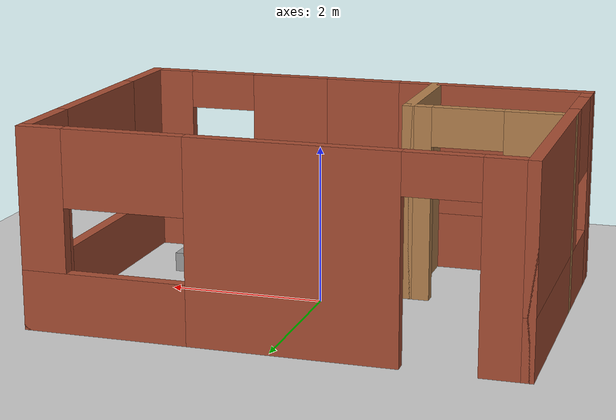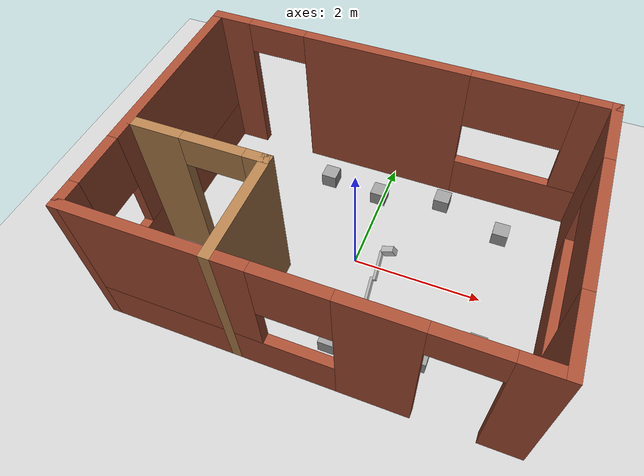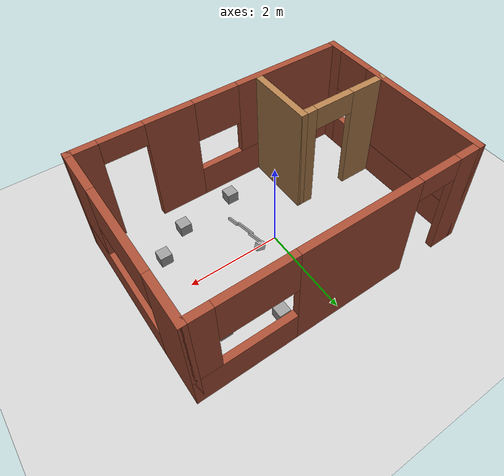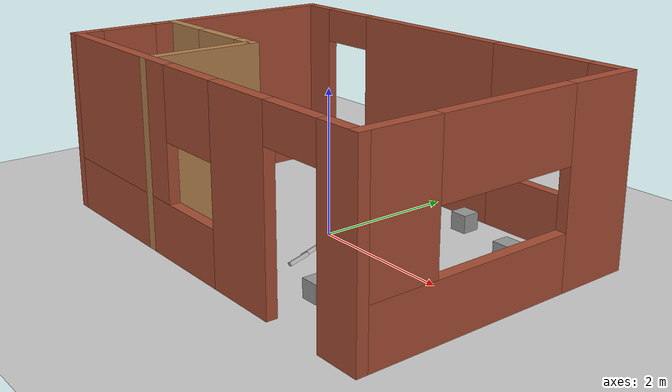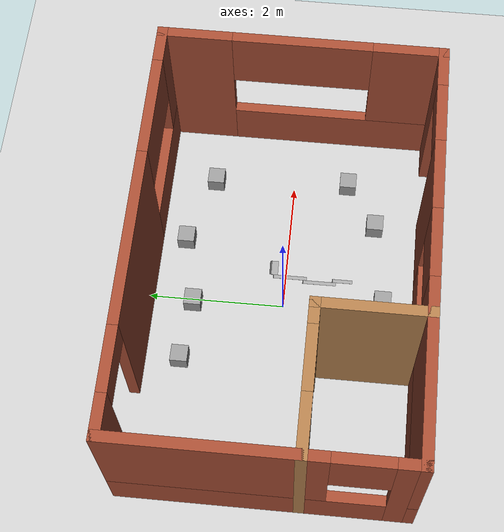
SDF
<sdf version="1.7">
 <world name="default">
  <light name="sun" type="directional">
   <pose>0 0 10 0 -0 0</pose>
   <diffuse>0.8 0.8 0.8 1</diffuse>
   <specular>0.2 0.2 0.2 1</specular>
   <attenuation>
    <range>1000</range>
    <constant>0.9</constant>
    <linear>0.01</linear>
    <quadratic>0.001</quadratic>
   </attenuation>
   <direction>-0.5 0.1 -0.9</direction>
   <spot><inner_angle>0</inner_angle><outer_angle>0</outer_angle><falloff>0</falloff></spot>
  </light>
  <model name="ground_plane">
   <static>1</static>
   <link name="link">
    <collision name="collision">
     <geometry><plane><normal>0 0 1</normal><size>100 100</size></plane></geometry>
     <surface>
      <contact><collide_bitmask>65535</collide_bitmask></contact>
      <friction><ode><mu>100</mu><mu2>50</mu2></ode></friction>
     </surface>
    </collision>
    <visual name="visual">
     <cast_shadows>0</cast_shadows>
     <geometry><plane><normal>0 0 1</normal><size>100 100</size></plane></geometry>
     <material>
      <script><uri>file://media/materials/scripts/gazebo.material</uri><name>Gazebo/Grey</name></script>
     </material>
    </visual>
   </link>
  </model>
  <gravity>0 0 -9.8</gravity>
  <magnetic_field>6e-06 2.3e-05 -4.2e-05</magnetic_field>
  <atmosphere type="adiabatic"/>
  <physics type="ode">
   <max_step_size>0.001</max_step_size>
   <real_time_factor>1</real_time_factor>
   <real_time_update_rate>1000</real_time_update_rate>
  </physics>
  <scene><ambient>0.4 0.4 0.4 1</ambient><background>0.7 0.7 0.7 1</background><shadows>1</shadows></scene>
  <audio><device>default</device></audio>
  <spherical_coordinates>
   <surface_model>EARTH_WGS84</surface_model>
   <latitude_deg>0</latitude_deg>
   <longitude_deg>0</longitude_deg>
   <elevation>0</elevation>
   <heading_deg>0</heading_deg>
  </spherical_coordinates>
  <model name="scara_world">
   <link name="Wall_0">
    <pose>0 2 0 0 -0 0</pose>
    <visual name="Wall_0_Visual_0">
     <pose>-2.7625 0 1.25 0 -0 0</pose>
     <geometry><box><size>0.625 0.15 2.5</size></box></geometry>
     <material>
      <script><uri>file://media/materials/scripts/gazebo.material</uri><name>Gazebo/Bricks</name></script>
      <ambient>1 1 1 1</ambient>
     </material>
     <meta><layer>0</layer></meta>
    </visual>
    <collision name="Wall_0_Collision_0">
     <geometry><box><size>0.625 0.15 2.5</size></box></geometry>
     <pose>-2.7625 0 1.25 0 -0 0</pose>
    </collision>
    <visual name="Wall_0_Visual_1">
     <pose>-0.275 0 1.25 0 -0 0</pose>
     <geometry><box><size>2.55 0.15 2.5</size></box></geometry>
     <material>
      <script><uri>file://media/materials/scripts/gazebo.material</uri><name>Gazebo/Bricks</name></script>
      <ambient>1 1 1 1</ambient>
     </material>
     <meta><layer>0</layer></meta>
    </visual>
    <collision name="Wall_0_Collision_1">
     <geometry><box><size>2.55 0.15 2.5</size></box></geometry>
     <pose>-0.275 0 1.25 0 -0 0</pose>
    </collision>
    <visual name="Wall_0_Visual_2">
     <pose>2.0375 0 0.375 0 -0 0</pose>
     <geometry><box><size>2.075 0.15 0.75</size></box></geometry>
     <material>
      <script><uri>file://media/materials/scripts/gazebo.material</uri><name>Gazebo/Bricks</name></script>
      <ambient>1 1 1 1</ambient>
     </material>
     <meta><layer>0</layer></meta>
    </visual>
    <collision name="Wall_0_Collision_2">
     <geometry><box><size>2.075 0.15 0.75</size></box></geometry>
     <pose>2.0375 0 0.375 0 -0 0</pose>
    </collision>
    <visual name="Wall_0_Visual_3">
     <pose>2.7875 0 1.625 0 -0 0</pose>
     <geometry><box><size>0.575 0.15 1.75</size></box></geometry>
     <material>
      <script><uri>file://media/materials/scripts/gazebo.material</uri><name>Gazebo/Bricks</name></script>
      <ambient>1 1 1 1</ambient>
     </material>
     <meta><layer>0</layer></meta>
    </visual>
    <collision name="Wall_0_Collision_3">
     <geometry><box><size>0.575 0.15 1.75</size></box></geometry>
     <pose>2.7875 0 1.625 0 -0 0</pose>
    </collision>
    <visual name="Wall_0_Visual_4">
     <pose>1.75 0 2.025 0 -0 0</pose>
     <geometry><box><size>1.5 0.15 0.95</size></box></geometry>
     <material>
      <script><uri>file://media/materials/scripts/gazebo.material</uri><name>Gazebo/Bricks</name></script>
      <ambient>1 1 1 1</ambient>
     </material>
     <meta><layer>0</layer></meta>
    </visual>
    <collision name="Wall_0_Collision_4">
     <geometry><box><size>1.5 0.15 0.95</size></box></geometry>
     <pose>1.75 0 2.025 0 -0 0</pose>
    </collision>
    <visual name="Wall_0_Visual_5">
     <pose>-2 0 2.25 0 -0 0</pose>
     <geometry><box><size>0.9 0.15 0.5</size></box></geometry>
     <material>
      <script><uri>file://media/materials/scripts/gazebo.material</uri><name>Gazebo/Bricks</name></script>
      <ambient>1 1 1 1</ambient>
     </material>
     <meta><layer>0</layer></meta>
    </visual>
    <collision name="Wall_0_Collision_5">
     <geometry><box><size>0.9 0.15 0.5</size></box></geometry>
     <pose>-2 0 2.25 0 -0 0</pose>
    </collision>
   </link>
   <link name="Wall_1">
    <pose>3 0 0 0 -0 -1.5708</pose>
    <visual name="Wall_1_Visual_0">
     <pose>-1.5375 0 1.25 0 -0 0</pose>
     <geometry><box><size>1.075 0.15 2.5</size></box></geometry>
     <material>
      <script><uri>file://media/materials/scripts/gazebo.material</uri><name>Gazebo/Bricks</name></script>
      <ambient>1 1 1 1</ambient>
     </material>
     <meta><layer>0</layer></meta>
    </visual>
    <collision name="Wall_1_Collision_0">
     <geometry><box><size>1.075 0.15 2.5</size></box></geometry>
     <pose>-1.5375 0 1.25 0 -0 0</pose>
    </collision>
    <visual name="Wall_1_Visual_1">
     <pose>0.5375 0 0.375 0 -0 0</pose>
     <geometry><box><size>3.075 0.15 0.75</size></box></geometry>
     <material>
      <script><uri>file://media/materials/scripts/gazebo.material</uri><name>Gazebo/Bricks</name></script>
      <ambient>1 1 1 1</ambient>
     </material>
     <meta><layer>0</layer></meta>
    </visual>
    <collision name="Wall_1_Collision_1">
     <geometry><box><size>3.075 0.15 0.75</size></box></geometry>
     <pose>0.5375 0 0.375 0 -0 0</pose>
    </collision>
    <visual name="Wall_1_Visual_2">
     <pose>1.5375 0 1.625 0 -0 0</pose>
     <geometry><box><size>1.075 0.15 1.75</size></box></geometry>
     <material>
      <script><uri>file://media/materials/scripts/gazebo.material</uri><name>Gazebo/Bricks</name></script>
      <ambient>1 1 1 1</ambient>
     </material>
     <meta><layer>0</layer></meta>
    </visual>
    <collision name="Wall_1_Collision_2">
     <geometry><box><size>1.075 0.15 1.75</size></box></geometry>
     <pose>1.5375 0 1.625 0 -0 0</pose>
    </collision>
    <visual name="Wall_1_Visual_3">
     <pose>0 0 2.025 0 -0 0</pose>
     <geometry><box><size>2 0.15 0.95</size></box></geometry>
     <material>
      <script><uri>file://media/materials/scripts/gazebo.material</uri><name>Gazebo/Bricks</name></script>
      <ambient>1 1 1 1</ambient>
     </material>
     <meta><layer>0</layer></meta>
    </visual>
    <collision name="Wall_1_Collision_3">
     <geometry><box><size>2 0.15 0.95</size></box></geometry>
     <pose>0 0 2.025 0 -0 0</pose>
    </collision>
   </link>
   <link name="Wall_2">
    <pose>0 -2 0 0 -0 3.14159</pose>
    <visual name="Wall_2_Visual_0">
     <pose>-2.7625 0 1.25 0 -0 0</pose>
     <geometry><box><size>0.625 0.15 2.5</size></box></geometry>
     <material>
      <script><uri>file://media/materials/scripts/gazebo.material</uri><name>Gazebo/Bricks</name></script>
      <ambient>1 1 1 1</ambient>
     </material>
     <meta><layer>0</layer></meta>
    </visual>
    <collision name="Wall_2_Collision_0">
     <geometry><box><size>0.625 0.15 2.5</size></box></geometry>
     <pose>-2.7625 0 1.25 0 -0 0</pose>
    </collision>
    <visual name="Wall_2_Visual_1">
     <pose>-1.025 0 1.25 0 -0 0</pose>
     <geometry><box><size>1.05 0.15 2.5</size></box></geometry>
     <material>
      <script><uri>file://media/materials/scripts/gazebo.material</uri><name>Gazebo/Bricks</name></script>
      <ambient>1 1 1 1</ambient>
     </material>
     <meta><layer>0</layer></meta>
    </visual>
    <collision name="Wall_2_Collision_1">
     <geometry><box><size>1.05 0.15 2.5</size></box></geometry>
     <pose>-1.025 0 1.25 0 -0 0</pose>
    </collision>
    <visual name="Wall_2_Visual_2">
     <pose>1.2875 0 0.375 0 -0 0</pose>
     <geometry><box><size>3.575 0.15 0.75</size></box></geometry>
     <material>
      <script><uri>file://media/materials/scripts/gazebo.material</uri><name>Gazebo/Bricks</name></script>
      <ambient>1 1 1 1</ambient>
     </material>
     <meta><layer>0</layer></meta>
    </visual>
    <collision name="Wall_2_Collision_2">
     <geometry><box><size>3.575 0.15 0.75</size></box></geometry>
     <pose>1.2875 0 0.375 0 -0 0</pose>
    </collision>
    <visual name="Wall_2_Visual_3">
     <pose>1.7875 0 1.625 0 -0 0</pose>
     <geometry><box><size>2.575 0.15 1.75</size></box></geometry>
     <material>
      <script><uri>file://media/materials/scripts/gazebo.material</uri><name>Gazebo/Bricks</name></script>
      <ambient>1 1 1 1</ambient>
     </material>
     <meta><layer>0</layer></meta>
    </visual>
    <collision name="Wall_2_Collision_3">
     <geometry><box><size>2.575 0.15 1.75</size></box></geometry>
     <pose>1.7875 0 1.625 0 -0 0</pose>
    </collision>
    <visual name="Wall_2_Visual_4">
     <pose>0 0 2.025 0 -0 0</pose>
     <geometry><box><size>1 0.15 0.95</size></box></geometry>
     <material>
      <script><uri>file://media/materials/scripts/gazebo.material</uri><name>Gazebo/Bricks</name></script>
      <ambient>1 1 1 1</ambient>
     </material>
     <meta><layer>0</layer></meta>
    </visual>
    <collision name="Wall_2_Collision_4">
     <geometry><box><size>1 0.15 0.95</size></box></geometry>
     <pose>0 0 2.025 0 -0 0</pose>
    </collision>
    <visual name="Wall_2_Visual_5">
     <pose>-2 0 2.25 0 -0 0</pose>
     <geometry><box><size>0.9 0.15 0.5</size></box></geometry>
     <material>
      <script><uri>file://media/materials/scripts/gazebo.material</uri><name>Gazebo/Bricks</name></script>
      <ambient>1 1 1 1</ambient>
     </material>
     <meta><layer>0</layer></meta>
    </visual>
    <collision name="Wall_2_Collision_5">
     <geometry><box><size>0.9 0.15 0.5</size></box></geometry>
     <pose>-2 0 2.25 0 -0 0</pose>
    </collision>
   </link>
   <link name="Wall_3">
    <pose>-3 0 0 0 -0 1.5708</pose>
    <visual name="Wall_3_Visual_0">
     <pose>-1.8625 0 1.25 0 -0 0</pose>
     <geometry><box><size>0.425 0.15 2.5</size></box></geometry>
     <material>
      <script><uri>file://media/materials/scripts/gazebo.material</uri><name>Gazebo/Bricks</name></script>
      <ambient>1 1 1 1</ambient>
     </material>
     <meta><layer>0</layer></meta>
    </visual>
    <collision name="Wall_3_Collision_0">
     <geometry><box><size>0.425 0.15 2.5</size></box></geometry>
     <pose>-1.8625 0 1.25 0 -0 0</pose>
    </collision>
    <visual name="Wall_3_Visual_1">
     <pose>0.2125 0 0.375 0 -0 0</pose>
     <geometry><box><size>3.725 0.15 0.75</size></box></geometry>
     <material>
      <script><uri>file://media/materials/scripts/gazebo.material</uri><name>Gazebo/Bricks</name></script>
      <ambient>1 1 1 1</ambient>
     </material>
     <meta><layer>0</layer></meta>
    </visual>
    <collision name="Wall_3_Collision_1">
     <geometry><box><size>3.725 0.15 0.75</size></box></geometry>
     <pose>0.2125 0 0.375 0 -0 0</pose>
    </collision>
    <visual name="Wall_3_Visual_2">
     <pose>0.6125 0 1.625 0 -0 0</pose>
     <geometry><box><size>2.925 0.15 1.75</size></box></geometry>
     <material>
      <script><uri>file://media/materials/scripts/gazebo.material</uri><name>Gazebo/Bricks</name></script>
      <ambient>1 1 1 1</ambient>
     </material>
     <meta><layer>0</layer></meta>
    </visual>
    <collision name="Wall_3_Collision_2">
     <geometry><box><size>2.925 0.15 1.75</size></box></geometry>
     <pose>0.6125 0 1.625 0 -0 0</pose>
    </collision>
    <visual name="Wall_3_Visual_3">
     <pose>-1.25 0 2.025 0 -0 0</pose>
     <geometry><box><size>0.8 0.15 0.95</size></box></geometry>
     <material>
      <script><uri>file://media/materials/scripts/gazebo.material</uri><name>Gazebo/Bricks</name></script>
      <ambient>1 1 1 1</ambient>
     </material>
     <meta><layer>0</layer></meta>
    </visual>
    <collision name="Wall_3_Collision_3">
     <geometry><box><size>0.8 0.15 0.95</size></box></geometry>
     <pose>-1.25 0 2.025 0 -0 0</pose>
    </collision>
   </link>
   <link name="Wall_5">
    <pose>-2 -0.5 0 0 -0 0</pose>
    <visual name="Wall_5_Visual_0">
     <pose>-0.6375 0 1.25 0 -0 0</pose>
     <geometry><box><size>0.875 0.15 2.5</size></box></geometry>
     <material>
      <script><uri>file://media/materials/scripts/gazebo.material</uri><name>Gazebo/Wood</name></script>
      <ambient>1 1 1 1</ambient>
     </material>
     <meta><layer>0</layer></meta>
    </visual>
    <collision name="Wall_5_Collision_0">
     <geometry><box><size>0.875 0.15 2.5</size></box></geometry>
     <pose>-0.6375 0 1.25 0 -0 0</pose>
    </collision>
    <visual name="Wall_5_Visual_1">
     <pose>0.8875 0 1.25 0 -0 0</pose>
     <geometry><box><size>0.375 0.15 2.5</size></box></geometry>
     <material>
      <script><uri>file://media/materials/scripts/gazebo.material</uri><name>Gazebo/Wood</name></script>
      <ambient>1 1 1 1</ambient>
     </material>
     <meta><layer>0</layer></meta>
    </visual>
    <collision name="Wall_5_Collision_1">
     <geometry><box><size>0.375 0.15 2.5</size></box></geometry>
     <pose>0.8875 0 1.25 0 -0 0</pose>
    </collision>
    <visual name="Wall_5_Visual_2">
     <pose>0.25 0 2.25 0 -0 0</pose>
     <geometry><box><size>0.9 0.15 0.5</size></box></geometry>
     <material>
      <script><uri>file://media/materials/scripts/gazebo.material</uri><name>Gazebo/Wood</name></script>
      <ambient>1 1 1 1</ambient>
     </material>
     <meta><layer>0</layer></meta>
    </visual>
    <collision name="Wall_5_Collision_2">
     <geometry><box><size>0.9 0.15 0.5</size></box></geometry>
     <pose>0.25 0 2.25 0 -0 0</pose>
    </collision>
   </link>
   <link name="Wall_6">
    <collision name="Wall_6_Collision">
     <geometry><box><size>1.65 0.15 2.5</size></box></geometry>
     <pose>0 0 1.25 0 -0 0</pose>
    </collision>
    <visual name="Wall_6_Visual">
     <pose>0 0 1.25 0 -0 0</pose>
     <geometry><box><size>1.65 0.15 2.5</size></box></geometry>
     <material>
      <script><uri>file://media/materials/scripts/gazebo.material</uri><name>Gazebo/Wood</name></script>
      <ambient>1 1 1 1</ambient>
     </material>
     <meta><layer>0</layer></meta>
    </visual>
    <pose>-1 -1.25 0 0 -0 -1.5708</pose>
   </link>
   <static>1</static>
  </model>
  <model name="unit_box">
   <link name="link">
    <inertial>
     <mass>1</mass>
     <inertia>
      <ixx>0.166667</ixx>
      <ixy>0</ixy>
      <ixz>0</ixz>
      <iyy>0.166667</iyy>
      <iyz>0</iyz>
      <izz>0.166667</izz>
     </inertia>
    </inertial>
    <visual name="visual">
     <geometry><box><size>0.25 0.25 0.25</size></box></geometry>
     <material>
      <script><name>Gazebo/Grey</name><uri>file://media/materials/scripts/gazebo.material</uri></script>
      <shader type="pixel"><normal_map>__default__</normal_map></shader>
      <ambient>0.3 0.3 0.3 1</ambient>
      <diffuse>0.7 0.7 0.7 1</diffuse>
      <specular>0.01 0.01 0.01 1</specular>
      <emissive>0 0 0 1</emissive>
     </material>
    </visual>
    <collision name="collision">
     <geometry><box><size>0.25 0.25 0.25</size></box></geometry>
     <surface>
      <friction>
       <ode><mu>1</mu><mu2>1</mu2><fdir1>0 0 0</fdir1><slip1>0</slip1><slip2>0</slip2></ode>
       <torsional>
        <coefficient>1</coefficient>
        <patch_radius>0</patch_radius>
        <surface_radius>0</surface_radius>
        <use_patch_radius>1</use_patch_radius>
        <ode><slip>0</slip></ode>
       </torsional>
      </friction>
      <bounce><restitution_coefficient>0</restitution_coefficient><threshold>1e+06</threshold></bounce>
      <contact>
       <collide_without_contact>0</collide_without_contact>
       <collide_without_contact_bitmask>1</collide_without_contact_bitmask>
       <collide_bitmask>1</collide_bitmask>
       <ode>
        <soft_cfm>0</soft_cfm>
        <soft_erp>0.2</soft_erp>
        <kp>1e+13</kp>
        <kd>1</kd>
        <max_vel>0.01</max_vel>
        <min_depth>0</min_depth>
       </ode>
       <bullet>
        <split_impulse>1</split_impulse>
        <split_impulse_penetration_threshold>-0.01</split_impulse_penetration_threshold>
        <soft_cfm>0</soft_cfm>
        <soft_erp>0.2</soft_erp>
        <kp>1e+13</kp>
        <kd>1</kd>
       </bullet>
      </contact>
     </surface>
    </collision>
   </link>
   <link name="link_clone">
    <inertial>
     <mass>1</mass>
     <inertia>
      <ixx>0.166667</ixx>
      <ixy>0</ixy>
      <ixz>0</ixz>
      <iyy>0.166667</iyy>
      <iyz>0</iyz>
      <izz>0.166667</izz>
     </inertia>
    </inertial>
    <pose>0.098467 -2.04443 -2e-05 1e-05 -0 0</pose>
    <visual name="visual">
     <geometry><box><size>0.25 0.25 0.25</size></box></geometry>
     <material>
      <script><name>Gazebo/Grey</name><uri>file://media/materials/scripts/gazebo.material</uri></script>
      <shader type="pixel"><normal_map>__default__</normal_map></shader>
      <ambient>0.3 0.3 0.3 1</ambient>
      <diffuse>0.7 0.7 0.7 1</diffuse>
      <specular>0.01 0.01 0.01 1</specular>
      <emissive>0 0 0 1</emissive>
     </material>
    </visual>
    <collision name="collision">
     <geometry><box><size>0.25 0.25 0.25</size></box></geometry>
     <surface>
      <friction>
       <ode><mu>1</mu><mu2>1</mu2><fdir1>0 0 0</fdir1><slip1>0</slip1><slip2>0</slip2></ode>
       <torsional>
        <coefficient>1</coefficient>
        <patch_radius>0</patch_radius>
        <surface_radius>0</surface_radius>
        <use_patch_radius>1</use_patch_radius>
        <ode><slip>0</slip></ode>
       </torsional>
      </friction>
      <bounce><restitution_coefficient>0</restitution_coefficient><threshold>1e+06</threshold></bounce>
      <contact>
       <collide_without_contact>0</collide_without_contact>
       <collide_without_contact_bitmask>1</collide_without_contact_bitmask>
       <collide_bitmask>1</collide_bitmask>
       <ode>
        <soft_cfm>0</soft_cfm>
        <soft_erp>0.2</soft_erp>
        <kp>1e+13</kp>
        <kd>1</kd>
        <max_vel>0.01</max_vel>
        <min_depth>0</min_depth>
       </ode>
       <bullet>
        <split_impulse>1</split_impulse>
        <split_impulse_penetration_threshold>-0.01</split_impulse_penetration_threshold>
        <soft_cfm>0</soft_cfm>
        <soft_erp>0.2</soft_erp>
        <kp>1e+13</kp>
        <kd>1</kd>
       </bullet>
      </contact>
     </surface>
    </collision>
   </link>
   <link name="link_clone_0">
    <inertial>
     <mass>1</mass>
     <inertia>
      <ixx>0.166667</ixx>
      <ixy>0</ixy>
      <ixz>0</ixz>
      <iyy>0.166667</iyy>
      <iyz>0</iyz>
      <izz>0.166667</izz>
     </inertia>
    </inertial>
    <pose>-1.05809 0.335206 3e-06 1e-05 -0 0</pose>
    <visual name="visual">
     <geometry><box><size>0.25 0.25 0.25</size></box></geometry>
     <material>
      <script><name>Gazebo/Grey</name><uri>file://media/materials/scripts/gazebo.material</uri></script>
      <shader type="pixel"><normal_map>__default__</normal_map></shader>
      <ambient>0.3 0.3 0.3 1</ambient>
      <diffuse>0.7 0.7 0.7 1</diffuse>
      <specular>0.01 0.01 0.01 1</specular>
      <emissive>0 0 0 1</emissive>
     </material>
    </visual>
    <collision name="collision">
     <geometry><box><size>0.25 0.25 0.25</size></box></geometry>
     <surface>
      <friction>
       <ode><mu>1</mu><mu2>1</mu2><fdir1>0 0 0</fdir1><slip1>0</slip1><slip2>0</slip2></ode>
       <torsional>
        <coefficient>1</coefficient>
        <patch_radius>0</patch_radius>
        <surface_radius>0</surface_radius>
        <use_patch_radius>1</use_patch_radius>
        <ode><slip>0</slip></ode>
       </torsional>
      </friction>
      <bounce><restitution_coefficient>0</restitution_coefficient><threshold>1e+06</threshold></bounce>
      <contact>
       <collide_without_contact>0</collide_without_contact>
       <collide_without_contact_bitmask>1</collide_without_contact_bitmask>
       <collide_bitmask>1</collide_bitmask>
       <ode>
        <soft_cfm>0</soft_cfm>
        <soft_erp>0.2</soft_erp>
        <kp>1e+13</kp>
        <kd>1</kd>
        <max_vel>0.01</max_vel>
        <min_depth>0</min_depth>
       </ode>
       <bullet>
        <split_impulse>1</split_impulse>
        <split_impulse_penetration_threshold>-0.01</split_impulse_penetration_threshold>
        <soft_cfm>0</soft_cfm>
        <soft_erp>0.2</soft_erp>
        <kp>1e+13</kp>
        <kd>1</kd>
       </bullet>
      </contact>
     </surface>
    </collision>
   </link>
   <link name="link_clone_1">
    <inertial>
     <mass>1</mass>
     <inertia>
      <ixx>0.166667</ixx>
      <ixy>0</ixy>
      <ixz>0</ixz>
      <iyy>0.166667</iyy>
      <iyz>0</iyz>
      <izz>0.166667</izz>
     </inertia>
    </inertial>
    <pose>-2.99875 0.194392 2e-06 1e-05 -0 0</pose>
    <visual name="visual">
     <geometry><box><size>0.25 0.25 0.25</size></box></geometry>
     <material>
      <script><name>Gazebo/Grey</name><uri>file://media/materials/scripts/gazebo.material</uri></script>
      <shader type="pixel"><normal_map>__default__</normal_map></shader>
      <ambient>0.3 0.3 0.3 1</ambient>
      <diffuse>0.7 0.7 0.7 1</diffuse>
      <specular>0.01 0.01 0.01 1</specular>
      <emissive>0 0 0 1</emissive>
     </material>
    </visual>
    <collision name="collision">
     <geometry><box><size>0.25 0.25 0.25</size></box></geometry>
     <surface>
      <friction>
       <ode><mu>1</mu><mu2>1</mu2><fdir1>0 0 0</fdir1><slip1>0</slip1><slip2>0</slip2></ode>
       <torsional>
        <coefficient>1</coefficient>
        <patch_radius>0</patch_radius>
        <surface_radius>0</surface_radius>
        <use_patch_radius>1</use_patch_radius>
        <ode><slip>0</slip></ode>
       </torsional>
      </friction>
      <bounce><restitution_coefficient>0</restitution_coefficient><threshold>1e+06</threshold></bounce>
      <contact>
       <collide_without_contact>0</collide_without_contact>
       <collide_without_contact_bitmask>1</collide_without_contact_bitmask>
       <collide_bitmask>1</collide_bitmask>
       <ode>
        <soft_cfm>0</soft_cfm>
        <soft_erp>0.2</soft_erp>
        <kp>1e+13</kp>
        <kd>1</kd>
        <max_vel>0.01</max_vel>
        <min_depth>0</min_depth>
       </ode>
       <bullet>
        <split_impulse>1</split_impulse>
        <split_impulse_penetration_threshold>-0.01</split_impulse_penetration_threshold>
        <soft_cfm>0</soft_cfm>
        <soft_erp>0.2</soft_erp>
        <kp>1e+13</kp>
        <kd>1</kd>
       </bullet>
      </contact>
     </surface>
    </collision>
   </link>
   <link name="link_clone_2">
    <inertial>
     <mass>1</mass>
     <inertia>
      <ixx>0.166667</ixx>
      <ixy>0</ixy>
      <ixz>0</ixz>
      <iyy>0.166667</iyy>
      <iyz>0</iyz>
      <izz>0.166667</izz>
     </inertia>
    </inertial>
    <pose>-1.87416 -2.69041 -2.6e-05 1e-05 -0 0</pose>
    <visual name="visual">
     <geometry><box><size>0.25 0.25 0.25</size></box></geometry>
     <material>
      <script><name>Gazebo/Grey</name><uri>file://media/materials/scripts/gazebo.material</uri></script>
      <shader type="pixel"><normal_map>__default__</normal_map></shader>
      <ambient>0.3 0.3 0.3 1</ambient>
      <diffuse>0.7 0.7 0.7 1</diffuse>
      <specular>0.01 0.01 0.01 1</specular>
      <emissive>0 0 0 1</emissive>
     </material>
    </visual>
    <collision name="collision">
     <geometry><box><size>0.25 0.25 0.25</size></box></geometry>
     <surface>
      <friction>
       <ode><mu>1</mu><mu2>1</mu2><fdir1>0 0 0</fdir1><slip1>0</slip1><slip2>0</slip2></ode>
       <torsional>
        <coefficient>1</coefficient>
        <patch_radius>0</patch_radius>
        <surface_radius>0</surface_radius>
        <use_patch_radius>1</use_patch_radius>
        <ode><slip>0</slip></ode>
       </torsional>
      </friction>
      <bounce><restitution_coefficient>0</restitution_coefficient><threshold>1e+06</threshold></bounce>
      <contact>
       <collide_without_contact>0</collide_without_contact>
       <collide_without_contact_bitmask>1</collide_without_contact_bitmask>
       <collide_bitmask>1</collide_bitmask>
       <ode>
        <soft_cfm>0</soft_cfm>
        <soft_erp>0.2</soft_erp>
        <kp>1e+13</kp>
        <kd>1</kd>
        <max_vel>0.01</max_vel>
        <min_depth>0</min_depth>
       </ode>
       <bullet>
        <split_impulse>1</split_impulse>
        <split_impulse_penetration_threshold>-0.01</split_impulse_penetration_threshold>
        <soft_cfm>0</soft_cfm>
        <soft_erp>0.2</soft_erp>
        <kp>1e+13</kp>
        <kd>1</kd>
       </bullet>
      </contact>
     </surface>
    </collision>
   </link>
   <link name="link_clone_3">
    <inertial>
     <mass>1</mass>
     <inertia>
      <ixx>0.166667</ixx>
      <ixy>0</ixy>
      <ixz>0</ixz>
      <iyy>0.166667</iyy>
      <iyz>0</iyz>
      <izz>0.166667</izz>
     </inertia>
    </inertial>
    <pose>-0.601496 -2.50113 -2.4e-05 1e-05 -0 0</pose>
    <visual name="visual">
     <geometry><box><size>0.25 0.25 0.25</size></box></geometry>
     <material>
      <script><name>Gazebo/Grey</name><uri>file://media/materials/scripts/gazebo.material</uri></script>
      <shader type="pixel"><normal_map>__default__</normal_map></shader>
      <ambient>0.3 0.3 0.3 1</ambient>
      <diffuse>0.7 0.7 0.7 1</diffuse>
      <specular>0.01 0.01 0.01 1</specular>
      <emissive>0 0 0 1</emissive>
     </material>
    </visual>
    <collision name="collision">
     <geometry><box><size>0.25 0.25 0.25</size></box></geometry>
     <surface>
      <friction>
       <ode><mu>1</mu><mu2>1</mu2><fdir1>0 0 0</fdir1><slip1>0</slip1><slip2>0</slip2></ode>
       <torsional>
        <coefficient>1</coefficient>
        <patch_radius>0</patch_radius>
        <surface_radius>0</surface_radius>
        <use_patch_radius>1</use_patch_radius>
        <ode><slip>0</slip></ode>
       </torsional>
      </friction>
      <bounce><restitution_coefficient>0</restitution_coefficient><threshold>1e+06</threshold></bounce>
      <contact>
       <collide_without_contact>0</collide_without_contact>
       <collide_without_contact_bitmask>1</collide_without_contact_bitmask>
       <collide_bitmask>1</collide_bitmask>
       <ode>
        <soft_cfm>0</soft_cfm>
        <soft_erp>0.2</soft_erp>
        <kp>1e+13</kp>
        <kd>1</kd>
        <max_vel>0.01</max_vel>
        <min_depth>0</min_depth>
       </ode>
       <bullet>
        <split_impulse>1</split_impulse>
        <split_impulse_penetration_threshold>-0.01</split_impulse_penetration_threshold>
        <soft_cfm>0</soft_cfm>
        <soft_erp>0.2</soft_erp>
        <kp>1e+13</kp>
        <kd>1</kd>
       </bullet>
      </contact>
     </surface>
    </collision>
   </link>
   <link name="link_clone_4">
    <inertial>
     <mass>1</mass>
     <inertia>
      <ixx>0.166667</ixx>
      <ixy>0</ixy>
      <ixz>0</ixz>
      <iyy>0.166667</iyy>
      <iyz>0</iyz>
      <izz>0.166667</izz>
     </inertia>
    </inertial>
    <pose>-2.08967 0.112713 1e-06 1e-05 -0 0</pose>
    <visual name="visual">
     <geometry><box><size>0.25 0.25 0.25</size></box></geometry>
     <material>
      <script><name>Gazebo/Grey</name><uri>file://media/materials/scripts/gazebo.material</uri></script>
      <shader type="pixel"><normal_map>__default__</normal_map></shader>
      <ambient>0.3 0.3 0.3 1</ambient>
      <diffuse>0.7 0.7 0.7 1</diffuse>
      <specular>0.01 0.01 0.01 1</specular>
      <emissive>0 0 0 1</emissive>
     </material>
    </visual>
    <collision name="collision">
     <geometry><box><size>0.25 0.25 0.25</size></box></geometry>
     <surface>
      <friction>
       <ode><mu>1</mu><mu2>1</mu2><fdir1>0 0 0</fdir1><slip1>0</slip1><slip2>0</slip2></ode>
       <torsional>
        <coefficient>1</coefficient>
        <patch_radius>0</patch_radius>
        <surface_radius>0</surface_radius>
        <use_patch_radius>1</use_patch_radius>
        <ode><slip>0</slip></ode>
       </torsional>
      </friction>
      <bounce><restitution_coefficient>0</restitution_coefficient><threshold>1e+06</threshold></bounce>
      <contact>
       <collide_without_contact>0</collide_without_contact>
       <collide_without_contact_bitmask>1</collide_without_contact_bitmask>
       <collide_bitmask>1</collide_bitmask>
       <ode>
        <soft_cfm>0</soft_cfm>
        <soft_erp>0.2</soft_erp>
        <kp>1e+13</kp>
        <kd>1</kd>
        <max_vel>0.01</max_vel>
        <min_depth>0</min_depth>
       </ode>
       <bullet>
        <split_impulse>1</split_impulse>
        <split_impulse_penetration_threshold>-0.01</split_impulse_penetration_threshold>
        <soft_cfm>0</soft_cfm>
        <soft_erp>0.2</soft_erp>
        <kp>1e+13</kp>
        <kd>1</kd>
       </bullet>
      </contact>
     </surface>
    </collision>
   </link>
   <static>0</static>
   <pose>2.02954 1.22222 0.125 0 -0 0</pose>
  </model>
  <model name="scara">
   <link name="base_link">
    <inertial>
     <mass>1</mass>
     <inertia><ixx>1</ixx><ixy>0</ixy><ixz>0</ixz><iyy>1</iyy><iyz>0</iyz><izz>1</izz></inertia>
    </inertial>
    <collision name="base_link_collision">
     <pose>0 0 0.1 0 -0 0</pose>
     <geometry><box><size>0.1 0.15 0.2</size></box></geometry>
    </collision>
    <visual name="base_link_visual">
     <pose>0 0 0.1 0 -0 0</pose>
     <geometry><box><size>0.1 0.15 0.2</size></box></geometry>
    </visual>
   </link>
   <joint name="link_1_joint" type="revolute">
    <pose relative_to="base_link">0 0 0.225 0 -0 0</pose>
    <parent>base_link</parent>
    <child>link_1</child>
    <axis>
     <xyz>0 0 1</xyz>
     <limit><lower>-3.14159</lower><upper>3.14159</upper><effort>1000</effort><velocity>50</velocity></limit>
     <dynamics><spring_reference>0</spring_reference><spring_stiffness>0</spring_stiffness></dynamics>
    </axis>
   </joint>
   <link name="link_1">
    <pose relative_to="link_1_joint">0 0 0 0 -0 0</pose>
    <inertial>
     <mass>1</mass>
     <inertia><ixx>1</ixx><ixy>0</ixy><ixz>0</ixz><iyy>1</iyy><iyz>0</iyz><izz>1</izz></inertia>
    </inertial>
    <collision name="link_1_collision">
     <pose>0.25 0 0 0 -0 0</pose>
     <geometry><box><size>0.5 0.05 0.05</size></box></geometry>
    </collision>
    <visual name="link_1_visual">
     <pose>0.25 0 0 0 -0 0</pose>
     <geometry><box><size>0.5 0.05 0.05</size></box></geometry>
    </visual>
   </link>
   <joint name="link_2_joint" type="revolute">
    <pose relative_to="link_1">0.45 0 0.05 0 -0 0</pose>
    <parent>link_1</parent>
    <child>link_2</child>
    <axis>
     <xyz>0 0 1</xyz>
     <limit><lower>-3.14159</lower><upper>3.14159</upper><effort>1000</effort><velocity>50</velocity></limit>
     <dynamics><spring_reference>0</spring_reference><spring_stiffness>0</spring_stiffness></dynamics>
    </axis>
   </joint>
   <link name="link_2">
    <pose relative_to="link_2_joint">0 0 0 0 -0 0</pose>
    <inertial>
     <mass>1</mass>
     <inertia><ixx>1</ixx><ixy>0</ixy><ixz>0</ixz><iyy>1</iyy><iyz>0</iyz><izz>1</izz></inertia>
    </inertial>
    <collision name="link_2_collision">
     <pose>0.25 0 0 0 -0 0</pose>
     <geometry><box><size>0.5 0.05 0.05</size></box></geometry>
    </collision>
    <visual name="link_2_visual">
     <pose>0.25 0 0 0 -0 0</pose>
     <geometry><box><size>0.5 0.05 0.05</size></box></geometry>
    </visual>
   </link>
   <joint name="link_3_joint" type="revolute">
    <pose relative_to="link_2">0.45 0 -0.05 0 -0 0</pose>
    <parent>link_2</parent>
    <child>link_3</child>
    <axis>
     <xyz>0 0 1</xyz>
     <limit><lower>-3.14159</lower><upper>3.14159</upper><effort>1000</effort><velocity>50</velocity></limit>
     <dynamics><spring_reference>0</spring_reference><spring_stiffness>0</spring_stiffness></dynamics>
    </axis>
   </joint>
   <link name="link_3">
    <pose relative_to="link_3_joint">0 0 0 0 -0 0</pose>
    <inertial>
     <mass>1</mass>
     <inertia><ixx>1</ixx><ixy>0</ixy><ixz>0</ixz><iyy>1</iyy><iyz>0</iyz><izz>1</izz></inertia>
    </inertial>
    <collision name="link_3_collision">
     <pose>0.15 0 0 0 -0 0</pose>
     <geometry><box><size>0.3 0.05 0.05</size></box></geometry>
    </collision>
    <visual name="link_3_visual">
     <pose>0.15 0 0 0 -0 0</pose>
     <geometry><box><size>0.3 0.05 0.05</size></box></geometry>
    </visual>
   </link>
   <static>0</static>
   <plugin name="gazebo_ros2_control" filename="libgazebo_ros2_control.so">
    <robot_param>robot_description</robot_param>
    <robot_param_node>robot_state_publisher</robot_param_node>
    <parameters>/home/robousr/Robotica2025-2/robolab20252/ExamenParcial2/ros2_ws/install/scara_control/share/scara_control/config/scara_controllers.yaml</parameters>
   </plugin>
   <pose>0.584031 0.177277 0.335091 2.01543 0.188448 -1.47417</pose>
  </model>
 </world>
</sdf>
